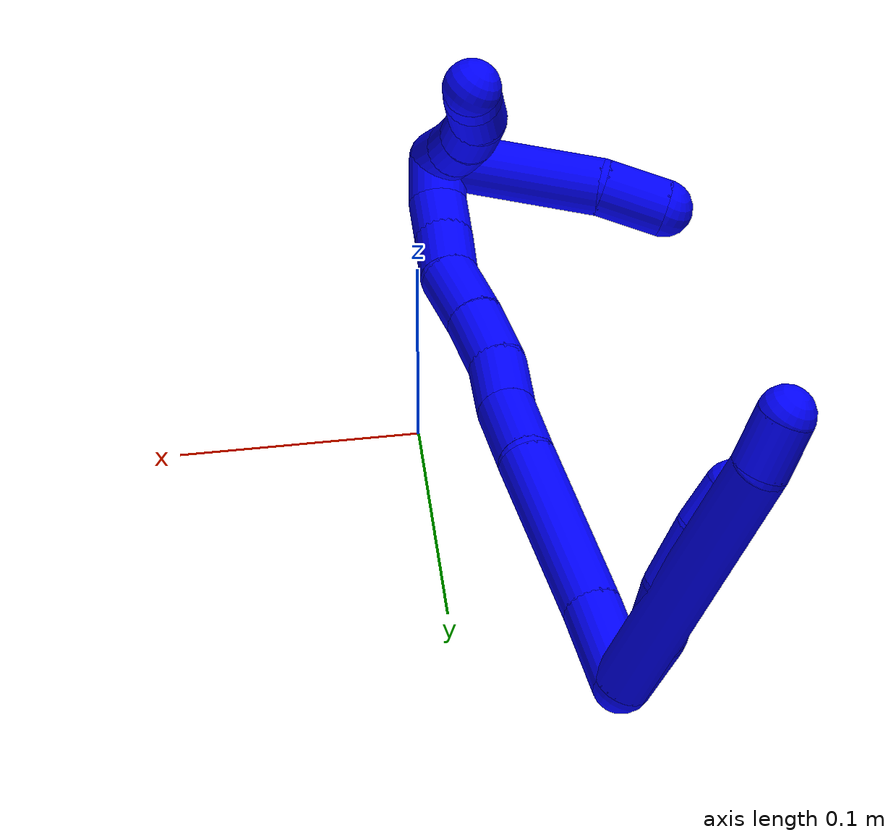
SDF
<sdf version="1.7">
 <world name="default">
  <model name="1">
   <static>0</static>
   <link name="1">
    <collision name="collision-cylinder-e_1_2_8">
     <pose>0.005322 0.003021 0.062188 -0.048534 0.085265 -0.002071</pose>
     <geometry><cylinder><radius>0.0125</radius><length>0.124977</length></cylinder></geometry>
     <surface>
      <friction><ode><mu>1.16</mu><mu2>1.16</mu2><slip1>0</slip1><slip2>0</slip2></ode></friction>
      <contact><ode><kp>1e+06</kp><kd>1</kd><max_vel>0</max_vel><min_depth>0.001</min_depth></ode></contact>
     </surface>
    </collision>
    <visual name="visual-cylinder-e_1_2_8">
     <pose>0.005322 0.003021 0.062188 -0.048534 0.085265 -0.002071</pose>
     <geometry><cylinder><radius>0.0125</radius><length>0.124977</length></cylinder></geometry>
     <material><ambient>0 0 1 1</ambient></material>
    </visual>
    <collision name="collision-cylinder-e_2_8_6">
     <pose>0.011791 0.003428 0.136558 0.211297 0.091875 0.00975</pose>
     <geometry><cylinder><radius>0.0125</radius><length>0.025023</length></cylinder></geometry>
     <surface>
      <friction><ode><mu>1.16</mu><mu2>1.16</mu2><slip1>0</slip1><slip2>0</slip2></ode></friction>
      <contact><ode><kp>1e+06</kp><kd>1</kd><max_vel>0</max_vel><min_depth>0.001</min_depth></ode></contact>
     </surface>
    </collision>
    <visual name="visual-cylinder-e_2_8_6">
     <pose>0.011791 0.003428 0.136558 0.211297 0.091875 0.00975</pose>
     <geometry><cylinder><radius>0.0125</radius><length>0.025023</length></cylinder></geometry>
     <material><ambient>0 0 1 1</ambient></material>
    </visual>
    <collision name="collision-cylinder-e_1_2_9">
     <pose>4.2e-05 -0.000456 0.014 0.032573 0.00303 4.9e-05</pose>
     <geometry><cylinder><radius>0.0125</radius><length>0.028015</length></cylinder></geometry>
     <surface>
      <friction><ode><mu>1.16</mu><mu2>1.16</mu2><slip1>0</slip1><slip2>0</slip2></ode></friction>
      <contact><ode><kp>1e+06</kp><kd>1</kd><max_vel>0</max_vel><min_depth>0.001</min_depth></ode></contact>
     </surface>
    </collision>
    <visual name="visual-cylinder-e_1_2_9">
     <pose>4.2e-05 -0.000456 0.014 0.032573 0.00303 4.9e-05</pose>
     <geometry><cylinder><radius>0.0125</radius><length>0.028015</length></cylinder></geometry>
     <material><ambient>0 0 1 1</ambient></material>
    </visual>
    <collision name="collision-cylinder-e_2_9_10">
     <pose>0.003054 -0.001947 0.039041 0.093445 0.261603 0.012302</pose>
     <geometry><cylinder><radius>0.0125</radius><length>0.02296</length></cylinder></geometry>
     <surface>
      <friction><ode><mu>1.16</mu><mu2>1.16</mu2><slip1>0</slip1><slip2>0</slip2></ode></friction>
      <contact><ode><kp>1e+06</kp><kd>1</kd><max_vel>0</max_vel><min_depth>0.001</min_depth></ode></contact>
     </surface>
    </collision>
    <visual name="visual-cylinder-e_2_9_10">
     <pose>0.003054 -0.001947 0.039041 0.093445 0.261603 0.012302</pose>
     <geometry><cylinder><radius>0.0125</radius><length>0.02296</length></cylinder></geometry>
     <material><ambient>0 0 1 1</ambient></material>
    </visual>
    <collision name="collision-cylinder-e_3_10_11">
     <pose>0.006678 -0.005474 0.064211 0.174577 0.045661 0.003996</pose>
     <geometry><cylinder><radius>0.0125</radius><length>0.028725</length></cylinder></geometry>
     <surface>
      <friction><ode><mu>1.16</mu><mu2>1.16</mu2><slip1>0</slip1><slip2>0</slip2></ode></friction>
      <contact><ode><kp>1e+06</kp><kd>1</kd><max_vel>0</max_vel><min_depth>0.001</min_depth></ode></contact>
     </surface>
    </collision>
    <visual name="visual-cylinder-e_3_10_11">
     <pose>0.006678 -0.005474 0.064211 0.174577 0.045661 0.003996</pose>
     <geometry><cylinder><radius>0.0125</radius><length>0.028725</length></cylinder></geometry>
     <material><ambient>0 0 1 1</ambient></material>
    </visual>
    <collision name="collision-cylinder-e_4_11_5">
     <pose>0.006429 -0.010493 0.08813 0.252617 -0.089264 -0.011343</pose>
     <geometry><cylinder><radius>0.0125</radius><length>0.0203</length></cylinder></geometry>
     <surface>
      <friction><ode><mu>1.16</mu><mu2>1.16</mu2><slip1>0</slip1><slip2>0</slip2></ode></friction>
      <contact><ode><kp>1e+06</kp><kd>1</kd><max_vel>0</max_vel><min_depth>0.001</min_depth></ode></contact>
     </surface>
    </collision>
    <visual name="visual-cylinder-e_4_11_5">
     <pose>0.006429 -0.010493 0.08813 0.252617 -0.089264 -0.011343</pose>
     <geometry><cylinder><radius>0.0125</radius><length>0.0203</length></cylinder></geometry>
     <material><ambient>0 0 1 1</ambient></material>
    </visual>
    <collision name="collision-cylinder-e_1_2_12">
     <pose>0.006589 -0.01857 0.001232 1.50457 0.340262 0.318822</pose>
     <geometry><cylinder><radius>0.0125</radius><length>0.039485</length></cylinder></geometry>
     <surface>
      <friction><ode><mu>1.16</mu><mu2>1.16</mu2><slip1>0</slip1><slip2>0</slip2></ode></friction>
      <contact><ode><kp>1e+06</kp><kd>1</kd><max_vel>0</max_vel><min_depth>0.001</min_depth></ode></contact>
     </surface>
    </collision>
    <visual name="visual-cylinder-e_1_2_12">
     <pose>0.006589 -0.01857 0.001232 1.50457 0.340262 0.318822</pose>
     <geometry><cylinder><radius>0.0125</radius><length>0.039485</length></cylinder></geometry>
     <material><ambient>0 0 1 1</ambient></material>
    </visual>
    <collision name="collision-cylinder-e_2_12_13">
     <pose>0.028427 -0.073995 0.005244 1.49548 0.391303 0.363534</pose>
     <geometry><cylinder><radius>0.0125</radius><length>0.079965</length></cylinder></geometry>
     <surface>
      <friction><ode><mu>1.16</mu><mu2>1.16</mu2><slip1>0</slip1><slip2>0</slip2></ode></friction>
      <contact><ode><kp>1e+06</kp><kd>1</kd><max_vel>0</max_vel><min_depth>0.001</min_depth></ode></contact>
     </surface>
    </collision>
    <visual name="visual-cylinder-e_2_12_13">
     <pose>0.028427 -0.073995 0.005244 1.49548 0.391303 0.363534</pose>
     <geometry><cylinder><radius>0.0125</radius><length>0.079965</length></cylinder></geometry>
     <material><ambient>0 0 1 1</ambient></material>
    </visual>
    <collision name="collision-cylinder-e_3_13_14">
     <pose>0.046862 -0.127348 0.006462 1.66529 0.189986 0.208713</pose>
     <geometry><cylinder><radius>0.0125</radius><length>0.033748</length></cylinder></geometry>
     <surface>
      <friction><ode><mu>1.16</mu><mu2>1.16</mu2><slip1>0</slip1><slip2>0</slip2></ode></friction>
      <contact><ode><kp>1e+06</kp><kd>1</kd><max_vel>0</max_vel><min_depth>0.001</min_depth></ode></contact>
     </surface>
    </collision>
    <visual name="visual-cylinder-e_3_13_14">
     <pose>0.046862 -0.127348 0.006462 1.66529 0.189986 0.208713</pose>
     <geometry><cylinder><radius>0.0125</radius><length>0.033748</length></cylinder></geometry>
     <material><ambient>0 0 1 1</ambient></material>
    </visual>
    <collision name="collision-cylinder-e_4_14_15">
     <pose>0.052361 -0.156573 0.006042 1.4812 0.178943 0.16366</pose>
     <geometry><cylinder><radius>0.0125</radius><length>0.025975</length></cylinder></geometry>
     <surface>
      <friction><ode><mu>1.16</mu><mu2>1.16</mu2><slip1>0</slip1><slip2>0</slip2></ode></friction>
      <contact><ode><kp>1e+06</kp><kd>1</kd><max_vel>0</max_vel><min_depth>0.001</min_depth></ode></contact>
     </surface>
    </collision>
    <visual name="visual-cylinder-e_4_14_15">
     <pose>0.052361 -0.156573 0.006042 1.4812 0.178943 0.16366</pose>
     <geometry><cylinder><radius>0.0125</radius><length>0.025975</length></cylinder></geometry>
     <material><ambient>0 0 1 1</ambient></material>
    </visual>
    <collision name="collision-cylinder-e_5_15_16">
     <pose>0.059297 -0.182545 0.006827 1.59786 0.335893 0.344929</pose>
     <geometry><cylinder><radius>0.0125</radius><length>0.028063</length></cylinder></geometry>
     <surface>
      <friction><ode><mu>1.16</mu><mu2>1.16</mu2><slip1>0</slip1><slip2>0</slip2></ode></friction>
      <contact><ode><kp>1e+06</kp><kd>1</kd><max_vel>0</max_vel><min_depth>0.001</min_depth></ode></contact>
     </surface>
    </collision>
    <visual name="visual-cylinder-e_5_15_16">
     <pose>0.059297 -0.182545 0.006827 1.59786 0.335893 0.344929</pose>
     <geometry><cylinder><radius>0.0125</radius><length>0.028063</length></cylinder></geometry>
     <material><ambient>0 0 1 1</ambient></material>
    </visual>
    <collision name="collision-cylinder-e_6_16_17">
     <pose>0.068941 -0.209528 0.005102 1.6699 0.348615 0.384151</pose>
     <geometry><cylinder><radius>0.0125</radius><length>0.029383</length></cylinder></geometry>
     <surface>
      <friction><ode><mu>1.16</mu><mu2>1.16</mu2><slip1>0</slip1><slip2>0</slip2></ode></friction>
      <contact><ode><kp>1e+06</kp><kd>1</kd><max_vel>0</max_vel><min_depth>0.001</min_depth></ode></contact>
     </surface>
    </collision>
    <visual name="visual-cylinder-e_6_16_17">
     <pose>0.068941 -0.209528 0.005102 1.6699 0.348615 0.384151</pose>
     <geometry><cylinder><radius>0.0125</radius><length>0.029383</length></cylinder></geometry>
     <material><ambient>0 0 1 1</ambient></material>
    </visual>
    <collision name="collision-cylinder-e_7_17_18">
     <pose>0.075388 -0.234725 0.004693 1.4875 0.12362 0.113751</pose>
     <geometry><cylinder><radius>0.0125</radius><length>0.02317</length></cylinder></geometry>
     <surface>
      <friction><ode><mu>1.16</mu><mu2>1.16</mu2><slip1>0</slip1><slip2>0</slip2></ode></friction>
      <contact><ode><kp>1e+06</kp><kd>1</kd><max_vel>0</max_vel><min_depth>0.001</min_depth></ode></contact>
     </surface>
    </collision>
    <visual name="visual-cylinder-e_7_17_18">
     <pose>0.075388 -0.234725 0.004693 1.4875 0.12362 0.113751</pose>
     <geometry><cylinder><radius>0.0125</radius><length>0.02317</length></cylinder></geometry>
     <material><ambient>0 0 1 1</ambient></material>
    </visual>
    <collision name="collision-cylinder-e_8_18_19">
     <pose>0.078965 -0.255794 0.007396 1.39101 0.216437 0.180859</pose>
     <geometry><cylinder><radius>0.0125</radius><length>0.020008</length></cylinder></geometry>
     <surface>
      <friction><ode><mu>1.16</mu><mu2>1.16</mu2><slip1>0</slip1><slip2>0</slip2></ode></friction>
      <contact><ode><kp>1e+06</kp><kd>1</kd><max_vel>0</max_vel><min_depth>0.001</min_depth></ode></contact>
     </surface>
    </collision>
    <visual name="visual-cylinder-e_8_18_19">
     <pose>0.078965 -0.255794 0.007396 1.39101 0.216437 0.180859</pose>
     <geometry><cylinder><radius>0.0125</radius><length>0.020008</length></cylinder></geometry>
     <material><ambient>0 0 1 1</ambient></material>
    </visual>
    <collision name="collision-cylinder-e_9_19_1">
     <pose>0.083603 -0.273852 0.014095 1.04048 0.249028 0.143159</pose>
     <geometry><cylinder><radius>0.0125</radius><length>0.020201</length></cylinder></geometry>
     <surface>
      <friction><ode><mu>1.16</mu><mu2>1.16</mu2><slip1>0</slip1><slip2>0</slip2></ode></friction>
      <contact><ode><kp>1e+06</kp><kd>1</kd><max_vel>0</max_vel><min_depth>0.001</min_depth></ode></contact>
     </surface>
    </collision>
    <visual name="visual-cylinder-e_9_19_1">
     <pose>0.083603 -0.273852 0.014095 1.04048 0.249028 0.143159</pose>
     <geometry><cylinder><radius>0.0125</radius><length>0.020201</length></cylinder></geometry>
     <material><ambient>0 0 1 1</ambient></material>
    </visual>
    <collision name="collision-cylinder-e_1_1_20">
     <pose>0.054738 -0.274161 0.03412 -0.494948 -1.0708 0.297529</pose>
     <geometry><cylinder><radius>0.0125</radius><length>0.071457</length></cylinder></geometry>
     <surface>
      <friction><ode><mu>1.16</mu><mu2>1.16</mu2><slip1>0</slip1><slip2>0</slip2></ode></friction>
      <contact><ode><kp>1e+06</kp><kd>1</kd><max_vel>0</max_vel><min_depth>0.001</min_depth></ode></contact>
     </surface>
    </collision>
    <visual name="visual-cylinder-e_1_1_20">
     <pose>0.054738 -0.274161 0.03412 -0.494948 -1.0708 0.297529</pose>
     <geometry><cylinder><radius>0.0125</radius><length>0.071457</length></cylinder></geometry>
     <material><ambient>0 0 1 1</ambient></material>
    </visual>
    <collision name="collision-cylinder-e_2_20_4">
     <pose>0.009574 -0.263885 0.052094 -0.635555 -1.3155 0.497661</pose>
     <geometry><cylinder><radius>0.0125</radius><length>0.028543</length></cylinder></geometry>
     <surface>
      <friction><ode><mu>1.16</mu><mu2>1.16</mu2><slip1>0</slip1><slip2>0</slip2></ode></friction>
      <contact><ode><kp>1e+06</kp><kd>1</kd><max_vel>0</max_vel><min_depth>0.001</min_depth></ode></contact>
     </surface>
    </collision>
    <visual name="visual-cylinder-e_2_20_4">
     <pose>0.009574 -0.263885 0.052094 -0.635555 -1.3155 0.497661</pose>
     <geometry><cylinder><radius>0.0125</radius><length>0.028543</length></cylinder></geometry>
     <material><ambient>0 0 1 1</ambient></material>
    </visual>
    <collision name="collision-cylinder-e_1_1_21">
     <pose>0.086613 -0.276073 0.026857 -0.672799 0.052124 -0.018231</pose>
     <geometry><cylinder><radius>0.0125</radius><length>0.02</length></cylinder></geometry>
     <surface>
      <friction><ode><mu>1.16</mu><mu2>1.16</mu2><slip1>0</slip1><slip2>0</slip2></ode></friction>
      <contact><ode><kp>1e+06</kp><kd>1</kd><max_vel>0</max_vel><min_depth>0.001</min_depth></ode></contact>
     </surface>
    </collision>
    <visual name="visual-cylinder-e_1_1_21">
     <pose>0.086613 -0.276073 0.026857 -0.672799 0.052124 -0.018231</pose>
     <geometry><cylinder><radius>0.0125</radius><length>0.02</length></cylinder></geometry>
     <material><ambient>0 0 1 1</ambient></material>
    </visual>
    <collision name="collision-cylinder-e_2_21_22">
     <pose>0.088492 -0.263762 0.042483 -0.661699 0.136232 -0.046856</pose>
     <geometry><cylinder><radius>0.0125</radius><length>0.02</length></cylinder></geometry>
     <surface>
      <friction><ode><mu>1.16</mu><mu2>1.16</mu2><slip1>0</slip1><slip2>0</slip2></ode></friction>
      <contact><ode><kp>1e+06</kp><kd>1</kd><max_vel>0</max_vel><min_depth>0.001</min_depth></ode></contact>
     </surface>
    </collision>
    <visual name="visual-cylinder-e_2_21_22">
     <pose>0.088492 -0.263762 0.042483 -0.661699 0.136232 -0.046856</pose>
     <geometry><cylinder><radius>0.0125</radius><length>0.02</length></cylinder></geometry>
     <material><ambient>0 0 1 1</ambient></material>
    </visual>
    <collision name="collision-cylinder-e_3_22_23">
     <pose>0.092377 -0.252378 0.058396 -0.579349 0.255455 -0.07652</pose>
     <geometry><cylinder><radius>0.0125</radius><length>0.02</length></cylinder></geometry>
     <surface>
      <friction><ode><mu>1.16</mu><mu2>1.16</mu2><slip1>0</slip1><slip2>0</slip2></ode></friction>
      <contact><ode><kp>1e+06</kp><kd>1</kd><max_vel>0</max_vel><min_depth>0.001</min_depth></ode></contact>
     </surface>
    </collision>
    <visual name="visual-cylinder-e_3_22_23">
     <pose>0.092377 -0.252378 0.058396 -0.579349 0.255455 -0.07652</pose>
     <geometry><cylinder><radius>0.0125</radius><length>0.02</length></cylinder></geometry>
     <material><ambient>0 0 1 1</ambient></material>
    </visual>
    <collision name="collision-cylinder-e_4_23_24">
     <pose>0.10036 -0.242415 0.073455 -0.59046 0.577042 -0.180038</pose>
     <geometry><cylinder><radius>0.0125</radius><length>0.02</length></cylinder></geometry>
     <surface>
      <friction><ode><mu>1.16</mu><mu2>1.16</mu2><slip1>0</slip1><slip2>0</slip2></ode></friction>
      <contact><ode><kp>1e+06</kp><kd>1</kd><max_vel>0</max_vel><min_depth>0.001</min_depth></ode></contact>
     </surface>
    </collision>
    <visual name="visual-cylinder-e_4_23_24">
     <pose>0.10036 -0.242415 0.073455 -0.59046 0.577042 -0.180038</pose>
     <geometry><cylinder><radius>0.0125</radius><length>0.02</length></cylinder></geometry>
     <material><ambient>0 0 1 1</ambient></material>
    </visual>
    <collision name="collision-cylinder-e_5_24_3">
     <pose>0.109848 -0.230959 0.086552 -0.835957 0.415082 -0.186509</pose>
     <geometry><cylinder><radius>0.0125</radius><length>0.02</length></cylinder></geometry>
     <surface>
      <friction><ode><mu>1.16</mu><mu2>1.16</mu2><slip1>0</slip1><slip2>0</slip2></ode></friction>
      <contact><ode><kp>1e+06</kp><kd>1</kd><max_vel>0</max_vel><min_depth>0.001</min_depth></ode></contact>
     </surface>
    </collision>
    <visual name="visual-cylinder-e_5_24_3">
     <pose>0.109848 -0.230959 0.086552 -0.835957 0.415082 -0.186509</pose>
     <geometry><cylinder><radius>0.0125</radius><length>0.02</length></cylinder></geometry>
     <material><ambient>0 0 1 1</ambient></material>
    </visual>
    <collision name="collision-sphere-3">
     <pose>0.11388 -0.22417 0.092687 0 -0 0</pose>
     <geometry><sphere><radius>0.0125</radius></sphere></geometry>
     <surface>
      <friction><ode><mu>1.16</mu><mu2>1.16</mu2><slip1>0</slip1><slip2>0</slip2></ode></friction>
      <contact><ode><kp>1e+06</kp><kd>1</kd><max_vel>0</max_vel><min_depth>0.001</min_depth></ode></contact>
     </surface>
    </collision>
    <visual name="visual-sphere-3">
     <pose>0.11388 -0.22417 0.092687 0 -0 0</pose>
     <geometry><sphere><radius>0.0125</radius></sphere></geometry>
     <material><ambient>0 0 1 1</ambient></material>
    </visual>
    <collision name="collision-sphere-24">
     <pose>0.105815 -0.237749 0.080417 0 -0 0</pose>
     <geometry><sphere><radius>0.0125</radius></sphere></geometry>
     <surface>
      <friction><ode><mu>1.16</mu><mu2>1.16</mu2><slip1>0</slip1><slip2>0</slip2></ode></friction>
      <contact><ode><kp>1e+06</kp><kd>1</kd><max_vel>0</max_vel><min_depth>0.001</min_depth></ode></contact>
     </surface>
    </collision>
    <visual name="visual-sphere-24">
     <pose>0.105815 -0.237749 0.080417 0 -0 0</pose>
     <geometry><sphere><radius>0.0125</radius></sphere></geometry>
     <material><ambient>0 0 1 1</ambient></material>
    </visual>
    <collision name="collision-sphere-23">
     <pose>0.094904 -0.24708 0.066493 0 -0 0</pose>
     <geometry><sphere><radius>0.0125</radius></sphere></geometry>
     <surface>
      <friction><ode><mu>1.16</mu><mu2>1.16</mu2><slip1>0</slip1><slip2>0</slip2></ode></friction>
      <contact><ode><kp>1e+06</kp><kd>1</kd><max_vel>0</max_vel><min_depth>0.001</min_depth></ode></contact>
     </surface>
    </collision>
    <visual name="visual-sphere-23">
     <pose>0.094904 -0.24708 0.066493 0 -0 0</pose>
     <geometry><sphere><radius>0.0125</radius></sphere></geometry>
     <material><ambient>0 0 1 1</ambient></material>
    </visual>
    <collision name="collision-sphere-22">
     <pose>0.08985 -0.257675 0.0503 0 -0 0</pose>
     <geometry><sphere><radius>0.0125</radius></sphere></geometry>
     <surface>
      <friction><ode><mu>1.16</mu><mu2>1.16</mu2><slip1>0</slip1><slip2>0</slip2></ode></friction>
      <contact><ode><kp>1e+06</kp><kd>1</kd><max_vel>0</max_vel><min_depth>0.001</min_depth></ode></contact>
     </surface>
    </collision>
    <visual name="visual-sphere-22">
     <pose>0.08985 -0.257675 0.0503 0 -0 0</pose>
     <geometry><sphere><radius>0.0125</radius></sphere></geometry>
     <material><ambient>0 0 1 1</ambient></material>
    </visual>
    <collision name="collision-sphere-21">
     <pose>0.087134 -0.26985 0.034667 0 -0 0</pose>
     <geometry><sphere><radius>0.0125</radius></sphere></geometry>
     <surface>
      <friction><ode><mu>1.16</mu><mu2>1.16</mu2><slip1>0</slip1><slip2>0</slip2></ode></friction>
      <contact><ode><kp>1e+06</kp><kd>1</kd><max_vel>0</max_vel><min_depth>0.001</min_depth></ode></contact>
     </surface>
    </collision>
    <visual name="visual-sphere-21">
     <pose>0.087134 -0.26985 0.034667 0 -0 0</pose>
     <geometry><sphere><radius>0.0125</radius></sphere></geometry>
     <material><ambient>0 0 1 1</ambient></material>
    </visual>
    <collision name="collision-sphere-4">
     <pose>-0.004235 -0.261746 0.054994 0 -0 0</pose>
     <geometry><sphere><radius>0.0125</radius></sphere></geometry>
     <surface>
      <friction><ode><mu>1.16</mu><mu2>1.16</mu2><slip1>0</slip1><slip2>0</slip2></ode></friction>
      <contact><ode><kp>1e+06</kp><kd>1</kd><max_vel>0</max_vel><min_depth>0.001</min_depth></ode></contact>
     </surface>
    </collision>
    <visual name="visual-sphere-4">
     <pose>-0.004235 -0.261746 0.054994 0 -0 0</pose>
     <geometry><sphere><radius>0.0125</radius></sphere></geometry>
     <material><ambient>0 0 1 1</ambient></material>
    </visual>
    <collision name="collision-sphere-20">
     <pose>0.023383 -0.266025 0.049193 0 -0 0</pose>
     <geometry><sphere><radius>0.0125</radius></sphere></geometry>
     <surface>
      <friction><ode><mu>1.16</mu><mu2>1.16</mu2><slip1>0</slip1><slip2>0</slip2></ode></friction>
      <contact><ode><kp>1e+06</kp><kd>1</kd><max_vel>0</max_vel><min_depth>0.001</min_depth></ode></contact>
     </surface>
    </collision>
    <visual name="visual-sphere-20">
     <pose>0.023383 -0.266025 0.049193 0 -0 0</pose>
     <geometry><sphere><radius>0.0125</radius></sphere></geometry>
     <material><ambient>0 0 1 1</ambient></material>
    </visual>
    <collision name="collision-sphere-11">
     <pose>0.007334 -0.007966 0.078341 0 -0 0</pose>
     <geometry><sphere><radius>0.0125</radius></sphere></geometry>
     <surface>
      <friction><ode><mu>1.16</mu><mu2>1.16</mu2><slip1>0</slip1><slip2>0</slip2></ode></friction>
      <contact><ode><kp>1e+06</kp><kd>1</kd><max_vel>0</max_vel><min_depth>0.001</min_depth></ode></contact>
     </surface>
    </collision>
    <visual name="visual-sphere-11">
     <pose>0.007334 -0.007966 0.078341 0 -0 0</pose>
     <geometry><sphere><radius>0.0125</radius></sphere></geometry>
     <material><ambient>0 0 1 1</ambient></material>
    </visual>
    <collision name="collision-sphere-10">
     <pose>0.006023 -0.002982 0.050082 0 -0 0</pose>
     <geometry><sphere><radius>0.0125</radius></sphere></geometry>
     <surface>
      <friction><ode><mu>1.16</mu><mu2>1.16</mu2><slip1>0</slip1><slip2>0</slip2></ode></friction>
      <contact><ode><kp>1e+06</kp><kd>1</kd><max_vel>0</max_vel><min_depth>0.001</min_depth></ode></contact>
     </surface>
    </collision>
    <visual name="visual-sphere-10">
     <pose>0.006023 -0.002982 0.050082 0 -0 0</pose>
     <geometry><sphere><radius>0.0125</radius></sphere></geometry>
     <material><ambient>0 0 1 1</ambient></material>
    </visual>
    <collision name="collision-sphere-6">
     <pose>0.012939 0.000815 0.14874 0 -0 0</pose>
     <geometry><sphere><radius>0.0125</radius></sphere></geometry>
     <surface>
      <friction><ode><mu>1.16</mu><mu2>1.16</mu2><slip1>0</slip1><slip2>0</slip2></ode></friction>
      <contact><ode><kp>1e+06</kp><kd>1</kd><max_vel>0</max_vel><min_depth>0.001</min_depth></ode></contact>
     </surface>
    </collision>
    <visual name="visual-sphere-6">
     <pose>0.012939 0.000815 0.14874 0 -0 0</pose>
     <geometry><sphere><radius>0.0125</radius></sphere></geometry>
     <material><ambient>0 0 1 1</ambient></material>
    </visual>
    <collision name="collision-sphere-9">
     <pose>8.5e-05 -0.000912 0.028 0 -0 0</pose>
     <geometry><sphere><radius>0.0125</radius></sphere></geometry>
     <surface>
      <friction><ode><mu>1.16</mu><mu2>1.16</mu2><slip1>0</slip1><slip2>0</slip2></ode></friction>
      <contact><ode><kp>1e+06</kp><kd>1</kd><max_vel>0</max_vel><min_depth>0.001</min_depth></ode></contact>
     </surface>
    </collision>
    <visual name="visual-sphere-9">
     <pose>8.5e-05 -0.000912 0.028 0 -0 0</pose>
     <geometry><sphere><radius>0.0125</radius></sphere></geometry>
     <material><ambient>0 0 1 1</ambient></material>
    </visual>
    <collision name="collision-sphere-2">
     <geometry><sphere><radius>0.0125</radius></sphere></geometry>
     <surface>
      <friction><ode><mu>1.16</mu><mu2>1.16</mu2><slip1>0</slip1><slip2>0</slip2></ode></friction>
      <contact><ode><kp>1e+06</kp><kd>1</kd><max_vel>0</max_vel><min_depth>0.001</min_depth></ode></contact>
     </surface>
    </collision>
    <visual name="visual-sphere-2">
     <geometry><sphere><radius>0.0125</radius></sphere></geometry>
     <material><ambient>0 0 1 1</ambient></material>
    </visual>
    <collision name="collision-sphere-19">
     <pose>0.081113 -0.265407 0.009144 0 -0 0</pose>
     <geometry><sphere><radius>0.0125</radius></sphere></geometry>
     <surface>
      <friction><ode><mu>1.16</mu><mu2>1.16</mu2><slip1>0</slip1><slip2>0</slip2></ode></friction>
      <contact><ode><kp>1e+06</kp><kd>1</kd><max_vel>0</max_vel><min_depth>0.001</min_depth></ode></contact>
     </surface>
    </collision>
    <visual name="visual-sphere-19">
     <pose>0.081113 -0.265407 0.009144 0 -0 0</pose>
     <geometry><sphere><radius>0.0125</radius></sphere></geometry>
     <material><ambient>0 0 1 1</ambient></material>
    </visual>
    <collision name="collision-sphere-8">
     <pose>0.010643 0.006041 0.124377 0 -0 0</pose>
     <geometry><sphere><radius>0.0125</radius></sphere></geometry>
     <surface>
      <friction><ode><mu>1.16</mu><mu2>1.16</mu2><slip1>0</slip1><slip2>0</slip2></ode></friction>
      <contact><ode><kp>1e+06</kp><kd>1</kd><max_vel>0</max_vel><min_depth>0.001</min_depth></ode></contact>
     </surface>
    </collision>
    <visual name="visual-sphere-8">
     <pose>0.010643 0.006041 0.124377 0 -0 0</pose>
     <geometry><sphere><radius>0.0125</radius></sphere></geometry>
     <material><ambient>0 0 1 1</ambient></material>
    </visual>
    <collision name="collision-sphere-5">
     <pose>0.005524 -0.01302 0.097918 0 -0 0</pose>
     <geometry><sphere><radius>0.0125</radius></sphere></geometry>
     <surface>
      <friction><ode><mu>1.16</mu><mu2>1.16</mu2><slip1>0</slip1><slip2>0</slip2></ode></friction>
      <contact><ode><kp>1e+06</kp><kd>1</kd><max_vel>0</max_vel><min_depth>0.001</min_depth></ode></contact>
     </surface>
    </collision>
    <visual name="visual-sphere-5">
     <pose>0.005524 -0.01302 0.097918 0 -0 0</pose>
     <geometry><sphere><radius>0.0125</radius></sphere></geometry>
     <material><ambient>0 0 1 1</ambient></material>
    </visual>
    <collision name="collision-sphere-12">
     <pose>0.013178 -0.03714 0.002463 0 -0 0</pose>
     <geometry><sphere><radius>0.0125</radius></sphere></geometry>
     <surface>
      <friction><ode><mu>1.16</mu><mu2>1.16</mu2><slip1>0</slip1><slip2>0</slip2></ode></friction>
      <contact><ode><kp>1e+06</kp><kd>1</kd><max_vel>0</max_vel><min_depth>0.001</min_depth></ode></contact>
     </surface>
    </collision>
    <visual name="visual-sphere-12">
     <pose>0.013178 -0.03714 0.002463 0 -0 0</pose>
     <geometry><sphere><radius>0.0125</radius></sphere></geometry>
     <material><ambient>0 0 1 1</ambient></material>
    </visual>
    <collision name="collision-sphere-13">
     <pose>0.043676 -0.110851 0.008025 0 -0 0</pose>
     <geometry><sphere><radius>0.0125</radius></sphere></geometry>
     <surface>
      <friction><ode><mu>1.16</mu><mu2>1.16</mu2><slip1>0</slip1><slip2>0</slip2></ode></friction>
      <contact><ode><kp>1e+06</kp><kd>1</kd><max_vel>0</max_vel><min_depth>0.001</min_depth></ode></contact>
     </surface>
    </collision>
    <visual name="visual-sphere-13">
     <pose>0.043676 -0.110851 0.008025 0 -0 0</pose>
     <geometry><sphere><radius>0.0125</radius></sphere></geometry>
     <material><ambient>0 0 1 1</ambient></material>
    </visual>
    <collision name="collision-sphere-14">
     <pose>0.050049 -0.143844 0.004898 0 -0 0</pose>
     <geometry><sphere><radius>0.0125</radius></sphere></geometry>
     <surface>
      <friction><ode><mu>1.16</mu><mu2>1.16</mu2><slip1>0</slip1><slip2>0</slip2></ode></friction>
      <contact><ode><kp>1e+06</kp><kd>1</kd><max_vel>0</max_vel><min_depth>0.001</min_depth></ode></contact>
     </surface>
    </collision>
    <visual name="visual-sphere-14">
     <pose>0.050049 -0.143844 0.004898 0 -0 0</pose>
     <geometry><sphere><radius>0.0125</radius></sphere></geometry>
     <material><ambient>0 0 1 1</ambient></material>
    </visual>
    <collision name="collision-sphere-15">
     <pose>0.054672 -0.169302 0.007185 0 -0 0</pose>
     <geometry><sphere><radius>0.0125</radius></sphere></geometry>
     <surface>
      <friction><ode><mu>1.16</mu><mu2>1.16</mu2><slip1>0</slip1><slip2>0</slip2></ode></friction>
      <contact><ode><kp>1e+06</kp><kd>1</kd><max_vel>0</max_vel><min_depth>0.001</min_depth></ode></contact>
     </surface>
    </collision>
    <visual name="visual-sphere-15">
     <pose>0.054672 -0.169302 0.007185 0 -0 0</pose>
     <geometry><sphere><radius>0.0125</radius></sphere></geometry>
     <material><ambient>0 0 1 1</ambient></material>
    </visual>
    <collision name="collision-sphere-16">
     <pose>0.063922 -0.195787 0.006469 0 -0 0</pose>
     <geometry><sphere><radius>0.0125</radius></sphere></geometry>
     <surface>
      <friction><ode><mu>1.16</mu><mu2>1.16</mu2><slip1>0</slip1><slip2>0</slip2></ode></friction>
      <contact><ode><kp>1e+06</kp><kd>1</kd><max_vel>0</max_vel><min_depth>0.001</min_depth></ode></contact>
     </surface>
    </collision>
    <visual name="visual-sphere-16">
     <pose>0.063922 -0.195787 0.006469 0 -0 0</pose>
     <geometry><sphere><radius>0.0125</radius></sphere></geometry>
     <material><ambient>0 0 1 1</ambient></material>
    </visual>
    <collision name="collision-sphere-17">
     <pose>0.07396 -0.223268 0.003736 0 -0 0</pose>
     <geometry><sphere><radius>0.0125</radius></sphere></geometry>
     <surface>
      <friction><ode><mu>1.16</mu><mu2>1.16</mu2><slip1>0</slip1><slip2>0</slip2></ode></friction>
      <contact><ode><kp>1e+06</kp><kd>1</kd><max_vel>0</max_vel><min_depth>0.001</min_depth></ode></contact>
     </surface>
    </collision>
    <visual name="visual-sphere-17">
     <pose>0.07396 -0.223268 0.003736 0 -0 0</pose>
     <geometry><sphere><radius>0.0125</radius></sphere></geometry>
     <material><ambient>0 0 1 1</ambient></material>
    </visual>
    <collision name="collision-sphere-18">
     <pose>0.076817 -0.246181 0.005649 0 -0 0</pose>
     <geometry><sphere><radius>0.0125</radius></sphere></geometry>
     <surface>
      <friction><ode><mu>1.16</mu><mu2>1.16</mu2><slip1>0</slip1><slip2>0</slip2></ode></friction>
      <contact><ode><kp>1e+06</kp><kd>1</kd><max_vel>0</max_vel><min_depth>0.001</min_depth></ode></contact>
     </surface>
    </collision>
    <visual name="visual-sphere-18">
     <pose>0.076817 -0.246181 0.005649 0 -0 0</pose>
     <geometry><sphere><radius>0.0125</radius></sphere></geometry>
     <material><ambient>0 0 1 1</ambient></material>
    </visual>
    <collision name="collision-sphere-1">
     <pose>0.086092 -0.282297 0.019046 0 -0 0</pose>
     <geometry><sphere><radius>0.0125</radius></sphere></geometry>
     <surface>
      <friction><ode><mu>1.16</mu><mu2>1.16</mu2><slip1>0</slip1><slip2>0</slip2></ode></friction>
      <contact><ode><kp>1e+06</kp><kd>1</kd><max_vel>0</max_vel><min_depth>0.001</min_depth></ode></contact>
     </surface>
    </collision>
    <visual name="visual-sphere-1">
     <pose>0.086092 -0.282297 0.019046 0 -0 0</pose>
     <geometry><sphere><radius>0.0125</radius></sphere></geometry>
     <material><ambient>0 0 1 1</ambient></material>
    </visual>
    <inertial>
     <pose>0.03903 -0.126376 0.03669 0 -0 0</pose>
     <mass>0.75</mass>
     <inertia><ixx>0.000292</ixx><ixy>0</ixy><ixz>0</ixz><iyy>0.00024</iyy><iyz>0</iyz><izz>6.7e-05</izz></inertia>
    </inertial>
   </link>
   <pose>-0.064327 0.155602 0.012434 0.202106 -0.517702 -0.187013</pose>
  </model>
 </world>
</sdf>
